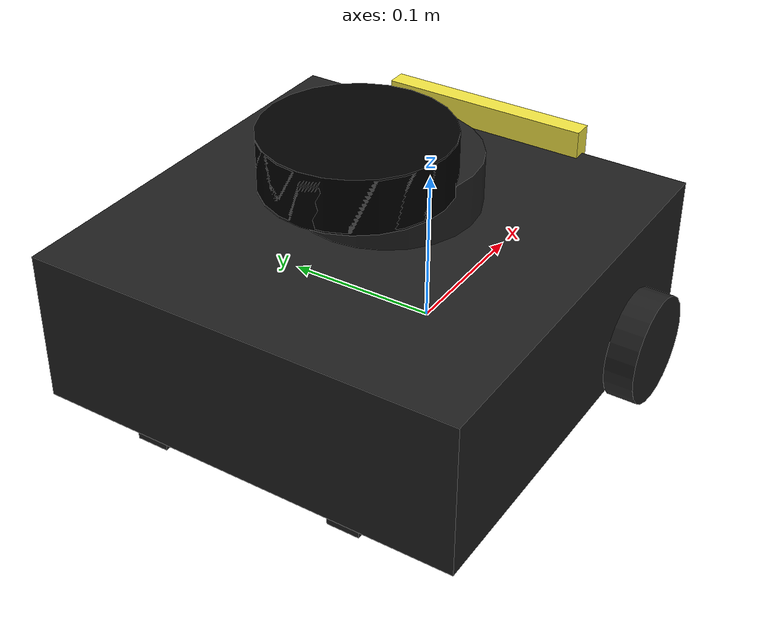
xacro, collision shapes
<?xml version="1.0" ?>
<robot name="global_camera" xmlns:xacro="http://ros.org/wiki/xacro">
  <xacro:include filename="$(find turtlebot3_description)/urdf/common_properties.xacro"/>
  <xacro:include filename="$(find multi-agents-formulation)/urdf/noise/turtlebot3_waffle_pi_noise.gazebo.xacro"/>

  <xacro:property name="r200_cam_rgb_px" value="0.005"/>
  <xacro:property name="r200_cam_rgb_py" value="0.018"/>
  <xacro:property name="r200_cam_rgb_pz" value="0.013"/>
  <xacro:property name="r200_cam_depth_offset" value="0.01"/>

  <link name="base_footprint"/>

  <joint name="base_joint" type="fixed">
    <parent link="base_footprint"/>
    <child link="base_link" />
    <origin xyz="0 0 0.010" rpy="0 0 0"/>
  </joint>

  <link name="base_link">
    <visual>
      <origin xyz="-0.064 0 0.0" rpy="0 0 0"/>
      <geometry>
        <mesh filename="package://turtlebot3_description/meshes/bases/waffle_base.stl" scale="0.001 0.001 0.001"/>
      </geometry>
      <material name="light_black"/>
    </visual>

    <collision>
      <origin xyz="-0.064 0 0.047" rpy="0 0 0"/>
      <geometry>
        <box size="0.266 0.266 0.094"/>
      </geometry>
    </collision>

    <inertial>
      <origin xyz="0 0 0" rpy="0 0 0"/>
      <mass value="1.3729096e+00"/>
      <inertia ixx="8.7002718e-03" ixy="-4.7576583e-05" ixz="1.1160499e-04"
               iyy="8.6195418e-03" iyz="-3.5422299e-06"
               izz="1.4612727e-02" />
    </inertial>
  </link>

  <joint name="wheel_left_joint" type="continuous">
    <parent link="base_link"/>
    <child link="wheel_left_link"/>
    <origin xyz="0.0 0.144 0.023" rpy="-1.57 0 0"/>
    <axis xyz="0 0 1"/>
  </joint>

  <link name="wheel_left_link">
    <visual>
      <origin xyz="0 0 0" rpy="1.57 0 0"/>
      <geometry>
        <mesh filename="package://turtlebot3_description/meshes/wheels/left_tire.stl" scale="0.001 0.001 0.001"/>
      </geometry>
      <material name="dark"/>
    </visual>

    <collision>
      <origin xyz="0 0 0" rpy="0 0 0"/>
      <geometry>
        <cylinder length="0.018" radius="0.033"/>
      </geometry>
    </collision>

    <inertial>
      <origin xyz="0 0 0" />
      <mass value="2.8498940e-02" />
      <inertia ixx="1.1175580e-05" ixy="-4.2369783e-11" ixz="-5.9381719e-09"
               iyy="1.1192413e-05" iyz="-1.4400107e-11"
               izz="2.0712558e-05" />
      </inertial>
  </link>

  <joint name="wheel_right_joint" type="continuous">
    <parent link="base_link"/>
    <child link="wheel_right_link"/>
    <origin xyz="0.0 -0.144 0.023" rpy="-1.57 0 0"/>
    <axis xyz="0 0 1"/>
  </joint>

  <link name="wheel_right_link">
    <visual>
      <origin xyz="0 0 0" rpy="1.57 0 0"/>
      <geometry>
        <mesh filename="package://turtlebot3_description/meshes/wheels/right_tire.stl" scale="0.001 0.001 0.001"/>
      </geometry>
      <material name="dark" />
    </visual>

    <collision>
      <origin xyz="0 0 0" rpy="0 0 0"/>
      <geometry>
        <cylinder length="0.018" radius="0.033"/>
      </geometry>
    </collision>

    <inertial>
      <origin xyz="0 0 0" />
      <mass value="2.8498940e-02" />
      <inertia ixx="1.1175580e-05" ixy="-4.2369783e-11" ixz="-5.9381719e-09"
               iyy="1.1192413e-05" iyz="-1.4400107e-11"
               izz="2.0712558e-05" />
      </inertial>
  </link>

  <joint name="caster_back_right_joint" type="fixed">
    <parent link="base_link"/>
    <child link="caster_back_right_link"/>
    <origin xyz="-0.177 -0.064 -0.004" rpy="-1.57 0 0"/>
  </joint>

  <link name="caster_back_right_link">
    <collision>
      <origin xyz="0 0.001 0" rpy="0 0 0"/>
      <geometry>
        <box size="0.030 0.009 0.020"/>
      </geometry>
    </collision>

    <inertial>
      <origin xyz="0 0 0" />
      <mass value="0.005" />
      <inertia ixx="0.001" ixy="0.0" ixz="0.0"
               iyy="0.001" iyz="0.0"
               izz="0.001" />
    </inertial>
  </link>

  <joint name="caster_back_left_joint" type="fixed">
    <parent link="base_link"/>
    <child link="caster_back_left_link"/>
    <origin xyz="-0.177 0.064 -0.004" rpy="-1.57 0 0"/>
  </joint>

  <link name="caster_back_left_link">
    <collision>
      <origin xyz="0 0.001 0" rpy="0 0 0"/>
      <geometry>
        <box size="0.030 0.009 0.020"/>
      </geometry>
    </collision>

    <inertial>
      <origin xyz="0 0 0" />
      <mass value="0.005" />
      <inertia ixx="0.001" ixy="0.0" ixz="0.0"
               iyy="0.001" iyz="0.0"
               izz="0.001" />
    </inertial>
  </link>

  <joint name="imu_joint" type="fixed">
    <parent link="base_link"/>
    <child link="imu_link"/>
    <origin xyz="0.0 0 0.068" rpy="0 0 0"/>
  </joint>

 <joint name="gps_joint" type="fixed">
    <parent link="base_link"/>
    <child link="gps_link"/>
    <origin xyz="0.0 0 0.068" rpy="0 0 0"/>
  </joint>

  <link name="imu_link"/>
  <link name="gps_link"/>

  <joint name="scan_joint" type="fixed">
    <parent link="base_link"/>
    <child link="base_scan"/>
    <origin xyz="-0.064 0 0.122" rpy="0 0 0"/>
  </joint>

  <link name="base_scan">
    <visual>
      <origin xyz="0 0 0" rpy="0 0 0"/>
      <geometry>
        <mesh filename="package://turtlebot3_description/meshes/sensors/lds.stl" scale="0.001 0.001 0.001"/>
      </geometry>
      <material name="dark"/>
    </visual>

    <collision>
      <origin xyz="0.015 0 -0.0065" rpy="0 0 0"/>
      <geometry>
        <cylinder length="0.0315" radius="0.055"/>
      </geometry>
    </collision>

    <inertial>
      <mass value="0.114" />
      <origin xyz="0 0 0" />
      <inertia ixx="0.001" ixy="0.0" ixz="0.0"
               iyy="0.001" iyz="0.0"
               izz="0.001" />
    </inertial>
  </link>

<gazebo reference="ball">
     <material>Marker/White</material>
     <turnGravityOff>false</turnGravityOff>
 </gazebo>

  <link name="ball">
    <visual>
      <origin xyz="0 0 0" rpy="0 0 0"/>
      <geometry>
             <box size="0.12 0.12 1e-5"/>
      </geometry>
         <material name="m_Blue">
    <color rgba="0.0 0.0 0.0 1.0"/>
    <lighting>1</lighting>
  </material>
    </visual>

    <collision>
      <origin xyz="0.015 0 -0.0065" rpy="0 0 0"/>
      <geometry>
        <cylinder length="0.0315" radius="0.055"/>
      </geometry>
    </collision>

    <inertial>
      <mass value="0.114" />
      <origin xyz="0 0 0" />
      <inertia ixx="0.001" ixy="0.0" ixz="0.0"
               iyy="0.001" iyz="0.0"
               izz="0.001" />
    </inertial>
  </link>

  <joint name="base_scan_ball" type="fixed">
    <parent link="base_scan"/>
    <child link="ball"/>
    <origin xyz="-0.0 0.0 0.012" rpy="0 -3.1415 0"/>
    <axis xyz="0 0 1"/>
  </joint>

<gazebo reference="aruco">
     <material>Marker/Marker2</material>
     <turnGravityOff>false</turnGravityOff>
 </gazebo>

  <link name="aruco">
    <visual>
      <origin xyz="0 0 0" rpy="0 0 0"/>
      <geometry>
             <box size="0.35 0.35 1e-5"/>
      </geometry>
         <material name="m_Blue">
    <color rgba="0.0 0.0 0.0 1.0"/>
  </material>
    </visual>

    <collision>
      <origin xyz="0.015 0 -0.0065" rpy="0 0 0"/>
      <geometry>
        <cylinder length="0.0315" radius="0.055"/>
      </geometry>
    </collision>

    <inertial>
      <mass value="0.114" />
      <origin xyz="0 0 0" />
      <inertia ixx="0.001" ixy="0.0" ixz="0.0"
               iyy="0.001" iyz="0.0"
               izz="0.001" />
    </inertial>
  </link>

  <joint name="aruco_scan_ball" type="fixed">
    <parent link="ball"/>
    <child link="aruco"/>
    <origin xyz="-0.0 0.0 -0.001" rpy="0 0 0"/>
    <axis xyz="0 0 1"/>
  </joint>

  <joint name="camera_joint" type="fixed">
    <origin xyz="0.064 -0.065 0.094" rpy="0 0 0"/>
    <parent link="base_link"/>
    <child link="camera_link"/>
  </joint>

  <link name="camera_link">
    <visual>
     <origin xyz="0 0 0" rpy="1.57 0 1.57"/>
      <geometry>
       <mesh filename="package://turtlebot3_description/meshes/sensors/r200.dae" />
      </geometry>
    </visual>
    <collision>
      <origin xyz="0.003 0.065 0.007" rpy="0 0 0"/>
      <geometry>
        <box size="0.012 0.132 0.020"/>
      </geometry>
    </collision>

    <!-- This inertial field needs doesn't contain reliable data!! -->
  </link>

  <joint name="camera_rgb_joint" type="fixed">
    <origin xyz="${r200_cam_rgb_px} ${r200_cam_rgb_py} ${r200_cam_rgb_pz}" rpy="0 0 0"/>
    <parent link="camera_link"/>
    <child link="camera_rgb_frame"/>
  </joint>
  <link name="camera_rgb_frame"/>

  <joint name="camera_rgb_optical_joint" type="fixed">
    <origin xyz="0 0 0" rpy="-1.57 0 -1.57"/>
    <parent link="camera_rgb_frame"/>
    <child link="camera_rgb_optical_frame"/>
  </joint>
  <link name="camera_rgb_optical_frame"/>

  <joint name="camera_depth_joint" type="fixed">
    <origin xyz="${r200_cam_rgb_px} ${r200_cam_rgb_py + r200_cam_depth_offset} ${r200_cam_rgb_pz}" rpy="0 0 0"/>
    <parent link="camera_link"/>
    <child link="camera_depth_frame"/>
  </joint>
  <link name="camera_depth_frame"/>

  <joint name="camera_depth_optical_joint" type="fixed">
    <origin xyz="0 0 0" rpy="-1.57 0 -1.57"/>
    <parent link="camera_depth_frame"/>
    <child link="camera_depth_optical_frame"/>
  </joint>
  <link name="camera_depth_optical_frame"/>

</robot>
